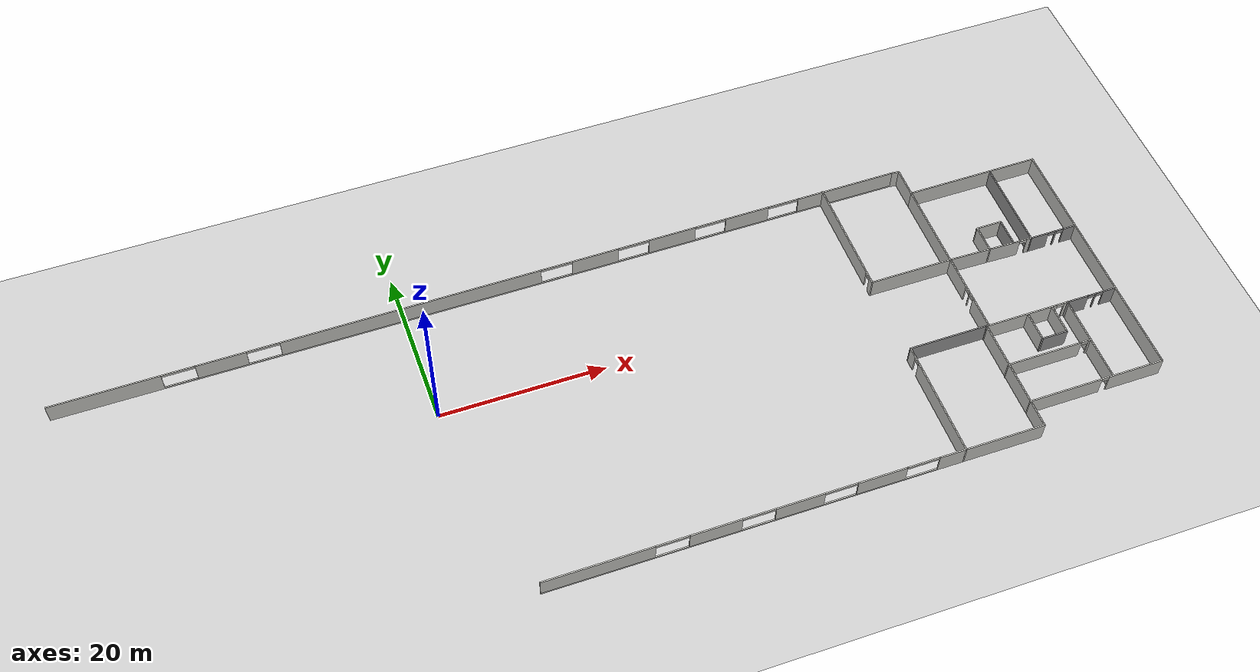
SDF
<sdf version="1.6">
 <world name="default">
  <model name="ground_plane">
   <static>1</static>
   <link name="link">
    <collision name="collision">
     <geometry><plane><normal>0 0 1</normal><size>100 100</size></plane></geometry>
     <surface><friction><ode><mu>100</mu><mu2>50</mu2></ode></friction></surface>
    </collision>
    <visual name="visual">
     <cast_shadows>0</cast_shadows>
     <geometry><plane><normal>0 0 1</normal><size>100 100</size></plane></geometry>
     <material>
      <script><uri>file://media/materials/scripts/gazebo.material</uri><name>Gazebo/Grey</name></script>
     </material>
    </visual>
   </link>
  </model>
  <model name="Erdgeschossen_labor">
   <pose>10.4105 -5.39464 0 0 -0 0</pose>
   <link name="Door_37">
    <collision name="Door_37_Collision">
     <geometry><box><size>0.9 0.17 2</size></box></geometry>
     <pose>0 0 1 0 -0 0</pose>
    </collision>
    <visual name="Door_37_Visual">
     <pose>0 0 1 0 -0 0</pose>
     <geometry><box><size>0.9 0.17 2</size></box></geometry>
     <material>
      <script><uri>file://media/materials/scripts/gazebo.material</uri><name>Gazebo/Grey</name></script>
     </material>
    </visual>
    <pose>54.7211 4.95557 0 0 -0 0</pose>
   </link>
   <link name="Wall_0">
    <pose>-0.038053 19.4617 0 0 -0 0</pose>
    <visual name="Wall_0_Visual_0">
     <pose>-45.1164 0 1.25 0 -0 0</pose>
     <geometry><box><size>13.0172 0.15 2.5</size></box></geometry>
     <material>
      <script><uri>file://media/materials/scripts/gazebo.material</uri><name>Gazebo/CeilingTiled</name></script>
      <ambient>1 1 1 1</ambient>
     </material>
    </visual>
    <collision name="Wall_0_Collision_0">
     <geometry><box><size>13.0172 0.15 2.5</size></box></geometry>
     <pose>-45.1164 0 1.25 0 -0 0</pose>
    </collision>
    <visual name="Wall_0_Visual_1">
     <pose>6.50859 0 0.1 0 -0 0</pose>
     <geometry><box><size>90.2328 0.15 0.2</size></box></geometry>
     <material>
      <script><uri>file://media/materials/scripts/gazebo.material</uri><name>Gazebo/CeilingTiled</name></script>
      <ambient>1 1 1 1</ambient>
     </material>
    </visual>
    <collision name="Wall_0_Collision_1">
     <geometry><box><size>90.2328 0.15 0.2</size></box></geometry>
     <pose>6.50859 0 0.1 0 -0 0</pose>
    </collision>
    <visual name="Wall_0_Visual_2">
     <pose>-31.7614 0 1.35 0 -0 0</pose>
     <geometry><box><size>5.93292 0.15 2.3</size></box></geometry>
     <material>
      <script><uri>file://media/materials/scripts/gazebo.material</uri><name>Gazebo/CeilingTiled</name></script>
      <ambient>1 1 1 1</ambient>
     </material>
    </visual>
    <collision name="Wall_0_Collision_2">
     <geometry><box><size>5.93292 0.15 2.3</size></box></geometry>
     <pose>-31.7614 0 1.35 0 -0 0</pose>
    </collision>
    <visual name="Wall_0_Visual_3">
     <pose>-9.24517 0 1.35 0 -0 0</pose>
     <geometry><box><size>31.3395 0.15 2.3</size></box></geometry>
     <material>
      <script><uri>file://media/materials/scripts/gazebo.material</uri><name>Gazebo/CeilingTiled</name></script>
      <ambient>1 1 1 1</ambient>
     </material>
    </visual>
    <collision name="Wall_0_Collision_3">
     <geometry><box><size>31.3395 0.15 2.3</size></box></geometry>
     <pose>-9.24517 0 1.35 0 -0 0</pose>
    </collision>
    <visual name="Wall_0_Visual_4">
     <pose>13.191 0 1.35 0 -0 0</pose>
     <geometry><box><size>5.77285 0.15 2.3</size></box></geometry>
     <material>
      <script><uri>file://media/materials/scripts/gazebo.material</uri><name>Gazebo/CeilingTiled</name></script>
      <ambient>1 1 1 1</ambient>
     </material>
    </visual>
    <collision name="Wall_0_Collision_4">
     <geometry><box><size>5.77285 0.15 2.3</size></box></geometry>
     <pose>13.191 0 1.35 0 -0 0</pose>
    </collision>
    <visual name="Wall_0_Visual_5">
     <pose>22.9057 0 1.35 0 -0 0</pose>
     <geometry><box><size>5.89661 0.15 2.3</size></box></geometry>
     <material>
      <script><uri>file://media/materials/scripts/gazebo.material</uri><name>Gazebo/CeilingTiled</name></script>
      <ambient>1 1 1 1</ambient>
     </material>
    </visual>
    <collision name="Wall_0_Collision_5">
     <geometry><box><size>5.89661 0.15 2.3</size></box></geometry>
     <pose>22.9057 0 1.35 0 -0 0</pose>
    </collision>
    <visual name="Wall_0_Visual_6">
     <pose>32.4967 0 1.35 0 -0 0</pose>
     <geometry><box><size>5.52534 0.15 2.3</size></box></geometry>
     <material>
      <script><uri>file://media/materials/scripts/gazebo.material</uri><name>Gazebo/CeilingTiled</name></script>
      <ambient>1 1 1 1</ambient>
     </material>
    </visual>
    <collision name="Wall_0_Collision_6">
     <geometry><box><size>5.52534 0.15 2.3</size></box></geometry>
     <pose>32.4967 0 1.35 0 -0 0</pose>
    </collision>
    <visual name="Wall_0_Visual_7">
     <pose>45.3822 0 1.35 0 -0 0</pose>
     <geometry><box><size>12.4856 0.15 2.3</size></box></geometry>
     <material>
      <script><uri>file://media/materials/scripts/gazebo.material</uri><name>Gazebo/CeilingTiled</name></script>
      <ambient>1 1 1 1</ambient>
     </material>
    </visual>
    <collision name="Wall_0_Collision_7">
     <geometry><box><size>12.4856 0.15 2.3</size></box></geometry>
     <pose>45.3822 0 1.35 0 -0 0</pose>
    </collision>
    <visual name="Wall_0_Visual_8">
     <pose>-36.6678 0 2.35 0 -0 0</pose>
     <geometry><box><size>3.88 0.15 0.3</size></box></geometry>
     <material>
      <script><uri>file://media/materials/scripts/gazebo.material</uri><name>Gazebo/CeilingTiled</name></script>
      <ambient>1 1 1 1</ambient>
     </material>
    </visual>
    <collision name="Wall_0_Collision_8">
     <geometry><box><size>3.88 0.15 0.3</size></box></geometry>
     <pose>-36.6678 0 2.35 0 -0 0</pose>
    </collision>
    <visual name="Wall_0_Visual_9">
     <pose>-26.8549 0 2.35 0 -0 0</pose>
     <geometry><box><size>3.88 0.15 0.3</size></box></geometry>
     <material>
      <script><uri>file://media/materials/scripts/gazebo.material</uri><name>Gazebo/CeilingTiled</name></script>
      <ambient>1 1 1 1</ambient>
     </material>
    </visual>
    <collision name="Wall_0_Collision_9">
     <geometry><box><size>3.88 0.15 0.3</size></box></geometry>
     <pose>-26.8549 0 2.35 0 -0 0</pose>
    </collision>
    <visual name="Wall_0_Visual_10">
     <pose>8.36458 0 2.35 0 -0 0</pose>
     <geometry><box><size>3.88 0.15 0.3</size></box></geometry>
     <material>
      <script><uri>file://media/materials/scripts/gazebo.material</uri><name>Gazebo/CeilingTiled</name></script>
      <ambient>1 1 1 1</ambient>
     </material>
    </visual>
    <collision name="Wall_0_Collision_10">
     <geometry><box><size>3.88 0.15 0.3</size></box></geometry>
     <pose>8.36458 0 2.35 0 -0 0</pose>
    </collision>
    <visual name="Wall_0_Visual_11">
     <pose>18.0174 0 2.35 0 -0 0</pose>
     <geometry><box><size>3.88 0.15 0.3</size></box></geometry>
     <material>
      <script><uri>file://media/materials/scripts/gazebo.material</uri><name>Gazebo/CeilingTiled</name></script>
      <ambient>1 1 1 1</ambient>
     </material>
    </visual>
    <collision name="Wall_0_Collision_11">
     <geometry><box><size>3.88 0.15 0.3</size></box></geometry>
     <pose>18.0174 0 2.35 0 -0 0</pose>
    </collision>
    <visual name="Wall_0_Visual_12">
     <pose>27.794 0 2.35 0 -0 0</pose>
     <geometry><box><size>3.88 0.15 0.3</size></box></geometry>
     <material>
      <script><uri>file://media/materials/scripts/gazebo.material</uri><name>Gazebo/CeilingTiled</name></script>
      <ambient>1 1 1 1</ambient>
     </material>
    </visual>
    <collision name="Wall_0_Collision_12">
     <geometry><box><size>3.88 0.15 0.3</size></box></geometry>
     <pose>27.794 0 2.35 0 -0 0</pose>
    </collision>
    <visual name="Wall_0_Visual_13">
     <pose>37.1994 0 2.35 0 -0 0</pose>
     <geometry><box><size>3.88 0.15 0.3</size></box></geometry>
     <material>
      <script><uri>file://media/materials/scripts/gazebo.material</uri><name>Gazebo/CeilingTiled</name></script>
      <ambient>1 1 1 1</ambient>
     </material>
    </visual>
    <collision name="Wall_0_Collision_13">
     <geometry><box><size>3.88 0.15 0.3</size></box></geometry>
     <pose>37.1994 0 2.35 0 -0 0</pose>
    </collision>
   </link>
   <link name="Wall_10">
    <pose>65.825 4.6812 0 0 -0 3.14159</pose>
    <visual name="Wall_10_Visual_0">
     <pose>-2.15466 0 1.25 0 -0 0</pose>
     <geometry><box><size>1.69069 0.15 2.5</size></box></geometry>
     <material>
      <script><uri>file://media/materials/scripts/gazebo.material</uri><name>Gazebo/Grey</name></script>
      <ambient>1 1 1 1</ambient>
     </material>
    </visual>
    <collision name="Wall_10_Collision_0">
     <geometry><box><size>1.69069 0.15 2.5</size></box></geometry>
     <pose>-2.15466 0 1.25 0 -0 0</pose>
    </collision>
    <visual name="Wall_10_Visual_1">
     <pose>-0.324451 0 1.25 0 -0 0</pose>
     <geometry><box><size>0.169725 0.15 2.5</size></box></geometry>
     <material>
      <script><uri>file://media/materials/scripts/gazebo.material</uri><name>Gazebo/Grey</name></script>
      <ambient>1 1 1 1</ambient>
     </material>
    </visual>
    <collision name="Wall_10_Collision_1">
     <geometry><box><size>0.169725 0.15 2.5</size></box></geometry>
     <pose>-0.324451 0 1.25 0 -0 0</pose>
    </collision>
    <visual name="Wall_10_Visual_2">
     <pose>1.83021 0 1.25 0 -0 0</pose>
     <geometry><box><size>2.33959 0.15 2.5</size></box></geometry>
     <material>
      <script><uri>file://media/materials/scripts/gazebo.material</uri><name>Gazebo/Grey</name></script>
      <ambient>1 1 1 1</ambient>
     </material>
    </visual>
    <collision name="Wall_10_Collision_2">
     <geometry><box><size>2.33959 0.15 2.5</size></box></geometry>
     <pose>1.83021 0 1.25 0 -0 0</pose>
    </collision>
    <visual name="Wall_10_Visual_3">
     <pose>-0.859314 0 2.25 0 -0 0</pose>
     <geometry><box><size>0.9 0.15 0.5</size></box></geometry>
     <material>
      <script><uri>file://media/materials/scripts/gazebo.material</uri><name>Gazebo/Grey</name></script>
      <ambient>1 1 1 1</ambient>
     </material>
    </visual>
    <collision name="Wall_10_Collision_3">
     <geometry><box><size>0.9 0.15 0.5</size></box></geometry>
     <pose>-0.859314 0 2.25 0 -0 0</pose>
    </collision>
    <visual name="Wall_10_Visual_4">
     <pose>0.210411 0 2.25 0 -0 0</pose>
     <geometry><box><size>0.9 0.15 0.5</size></box></geometry>
     <material>
      <script><uri>file://media/materials/scripts/gazebo.material</uri><name>Gazebo/Grey</name></script>
      <ambient>1 1 1 1</ambient>
     </material>
    </visual>
    <collision name="Wall_10_Collision_4">
     <geometry><box><size>0.9 0.15 0.5</size></box></geometry>
     <pose>0.210411 0 2.25 0 -0 0</pose>
    </collision>
   </link>
   <link name="Wall_11">
    <collision name="Wall_11_Collision">
     <geometry><box><size>11 0.15 2.5</size></box></geometry>
     <pose>0 0 1.25 0 -0 0</pose>
    </collision>
    <visual name="Wall_11_Visual">
     <pose>0 0 1.25 0 -0 0</pose>
     <geometry><box><size>11 0.15 2.5</size></box></geometry>
     <material>
      <script><uri>file://media/materials/scripts/gazebo.material</uri><name>Gazebo/Grey</name></script>
      <ambient>1 1 1 1</ambient>
     </material>
    </visual>
    <pose>62.9 10.1062 0 0 -0 1.5708</pose>
   </link>
   <link name="Wall_13">
    <collision name="Wall_13_Collision">
     <geometry><box><size>1.04169 0.15 2.5</size></box></geometry>
     <pose>0 0 1.25 0 -0 0</pose>
    </collision>
    <visual name="Wall_13_Visual">
     <pose>0 0 1.25 0 -0 0</pose>
     <geometry><box><size>1.04169 0.15 2.5</size></box></geometry>
     <material>
      <script><uri>file://media/materials/scripts/gazebo.material</uri><name>Gazebo/CeilingTiled</name></script>
      <ambient>1 1 1 1</ambient>
     </material>
    </visual>
    <pose>51.956 19.4215 0 0 -0 3.05118</pose>
   </link>
   <link name="Wall_15">
    <collision name="Wall_15_Collision">
     <geometry><box><size>11 0.15 2.5</size></box></geometry>
     <pose>0 0 1.25 0 -0 0</pose>
    </collision>
    <visual name="Wall_15_Visual">
     <pose>0 0 1.25 0 -0 0</pose>
     <geometry><box><size>11 0.15 2.5</size></box></geometry>
     <material>
      <script><uri>file://media/materials/scripts/gazebo.material</uri><name>Gazebo/CeilingTiled</name></script>
      <ambient>1 1 1 1</ambient>
     </material>
    </visual>
    <pose>52.4 10.3562 0 0 0 -1.5708</pose>
   </link>
   <link name="Wall_16">
    <pose>57.65 4.8062 0 0 0 -0.023805</pose>
    <visual name="Wall_16_Visual_0">
     <pose>-0.791437 0 1.25 0 -0 0</pose>
     <geometry><box><size>9.0701 0.15 2.5</size></box></geometry>
     <material>
      <script><uri>file://media/materials/scripts/gazebo.material</uri><name>Gazebo/CeilingTiled</name></script>
      <ambient>1 1 1 1</ambient>
     </material>
    </visual>
    <collision name="Wall_16_Collision_0">
     <geometry><box><size>9.0701 0.15 2.5</size></box></geometry>
     <pose>-0.791437 0 1.25 0 -0 0</pose>
    </collision>
    <visual name="Wall_16_Visual_1">
     <pose>4.98505 0 1.25 0 -0 0</pose>
     <geometry><box><size>0.682875 0.15 2.5</size></box></geometry>
     <material>
      <script><uri>file://media/materials/scripts/gazebo.material</uri><name>Gazebo/CeilingTiled</name></script>
      <ambient>1 1 1 1</ambient>
     </material>
    </visual>
    <collision name="Wall_16_Collision_1">
     <geometry><box><size>0.682875 0.15 2.5</size></box></geometry>
     <pose>4.98505 0 1.25 0 -0 0</pose>
    </collision>
    <visual name="Wall_16_Visual_2">
     <pose>4.19361 0 2.25 0 -0 0</pose>
     <geometry><box><size>0.9 0.15 0.5</size></box></geometry>
     <material>
      <script><uri>file://media/materials/scripts/gazebo.material</uri><name>Gazebo/CeilingTiled</name></script>
      <ambient>1 1 1 1</ambient>
     </material>
    </visual>
    <collision name="Wall_16_Collision_2">
     <geometry><box><size>0.9 0.15 0.5</size></box></geometry>
     <pose>4.19361 0 2.25 0 -0 0</pose>
    </collision>
   </link>
   <link name="Wall_18">
    <collision name="Wall_18_Collision">
     <geometry><box><size>21 0.15 2.5</size></box></geometry>
     <pose>0 0 1.25 0 -0 0</pose>
    </collision>
    <visual name="Wall_18_Visual">
     <pose>0 0 1.25 0 -0 0</pose>
     <geometry><box><size>21 0.15 2.5</size></box></geometry>
     <material>
      <script><uri>file://media/materials/scripts/gazebo.material</uri><name>Gazebo/CeilingTiled</name></script>
      <ambient>1 1 1 1</ambient>
     </material>
    </visual>
    <pose>68.75 -5.7438 0 0 0 -1.5708</pose>
   </link>
   <link name="Wall_19">
    <pose>60.45 -16.1688 0 0 -0 3.14159</pose>
    <visual name="Wall_19_Visual_0">
     <pose>-4.96727 0 1.25 0 -0 0</pose>
     <geometry><box><size>6.81547 0.15 2.5</size></box></geometry>
     <material>
      <script><uri>file://media/materials/scripts/gazebo.material</uri><name>Gazebo/CeilingTiled</name></script>
      <ambient>1 1 1 1</ambient>
     </material>
    </visual>
    <collision name="Wall_19_Collision_0">
     <geometry><box><size>6.81547 0.15 2.5</size></box></geometry>
     <pose>-4.96727 0 1.25 0 -0 0</pose>
    </collision>
    <visual name="Wall_19_Visual_1">
     <pose>3.85773 0 1.25 0 -0 0</pose>
     <geometry><box><size>9.03453 0.15 2.5</size></box></geometry>
     <material>
      <script><uri>file://media/materials/scripts/gazebo.material</uri><name>Gazebo/CeilingTiled</name></script>
      <ambient>1 1 1 1</ambient>
     </material>
    </visual>
    <collision name="Wall_19_Collision_1">
     <geometry><box><size>9.03453 0.15 2.5</size></box></geometry>
     <pose>3.85773 0 1.25 0 -0 0</pose>
    </collision>
    <visual name="Wall_19_Visual_2">
     <pose>-1.10953 0 2.25 0 -0 0</pose>
     <geometry><box><size>0.9 0.15 0.5</size></box></geometry>
     <material>
      <script><uri>file://media/materials/scripts/gazebo.material</uri><name>Gazebo/CeilingTiled</name></script>
      <ambient>1 1 1 1</ambient>
     </material>
    </visual>
    <collision name="Wall_19_Collision_2">
     <geometry><box><size>0.9 0.15 0.5</size></box></geometry>
     <pose>-1.10953 0 2.25 0 -0 0</pose>
    </collision>
   </link>
   <link name="Wall_20">
    <collision name="Wall_20_Collision">
     <geometry><box><size>10.75 0.15 2.5</size></box></geometry>
     <pose>0 0 1.25 0 -0 0</pose>
    </collision>
    <visual name="Wall_20_Visual">
     <pose>0 0 1.25 0 -0 0</pose>
     <geometry><box><size>10.75 0.15 2.5</size></box></geometry>
     <material>
      <script><uri>file://media/materials/scripts/gazebo.material</uri><name>Gazebo/CeilingTiled</name></script>
      <ambient>1 1 1 1</ambient>
     </material>
    </visual>
    <pose>52.15 -10.8688 0 0 -0 1.5708</pose>
   </link>
   <link name="Wall_22">
    <collision name="Wall_22_Collision">
     <geometry><box><size>10.5 0.15 2.5</size></box></geometry>
     <pose>0 0 1.25 0 -0 0</pose>
    </collision>
    <visual name="Wall_22_Visual">
     <pose>0 0 1.25 0 -0 0</pose>
     <geometry><box><size>10.5 0.15 2.5</size></box></geometry>
     <material>
      <script><uri>file://media/materials/scripts/gazebo.material</uri><name>Gazebo/CeilingTiled</name></script>
      <ambient>1 1 1 1</ambient>
     </material>
    </visual>
    <pose>62.5 -10.7438 0 0 0 -1.5708</pose>
   </link>
   <link name="Wall_25">
    <collision name="Wall_25_Collision">
     <geometry><box><size>0.5 0.15 2.5</size></box></geometry>
     <pose>0 0 1.25 0 -0 0</pose>
    </collision>
    <visual name="Wall_25_Visual">
     <pose>0 0 1.25 0 -0 0</pose>
     <geometry><box><size>0.5 0.15 2.5</size></box></geometry>
     <material>
      <script><uri>file://media/materials/scripts/gazebo.material</uri><name>Gazebo/Grey</name></script>
      <ambient>1 1 1 1</ambient>
     </material>
    </visual>
    <pose>52.15 -5.3938 0 0 -0 1.5708</pose>
   </link>
   <link name="Wall_26">
    <pose>57.325 -5.2188 0 0 -0 0</pose>
    <visual name="Wall_26_Visual_0">
     <pose>-0.710538 0 1.25 0 -0 0</pose>
     <geometry><box><size>9.07892 0.15 2.5</size></box></geometry>
     <material>
      <script><uri>file://media/materials/scripts/gazebo.material</uri><name>Gazebo/CeilingTiled</name></script>
      <ambient>1 1 1 1</ambient>
     </material>
    </visual>
    <collision name="Wall_26_Collision_0">
     <geometry><box><size>9.07892 0.15 2.5</size></box></geometry>
     <pose>-0.710538 0 1.25 0 -0 0</pose>
    </collision>
    <visual name="Wall_26_Visual_1">
     <pose>4.98946 0 1.25 0 -0 0</pose>
     <geometry><box><size>0.521077 0.15 2.5</size></box></geometry>
     <material>
      <script><uri>file://media/materials/scripts/gazebo.material</uri><name>Gazebo/CeilingTiled</name></script>
      <ambient>1 1 1 1</ambient>
     </material>
    </visual>
    <collision name="Wall_26_Collision_1">
     <geometry><box><size>0.521077 0.15 2.5</size></box></geometry>
     <pose>4.98946 0 1.25 0 -0 0</pose>
    </collision>
    <visual name="Wall_26_Visual_2">
     <pose>4.27892 0 2.25 0 -0 0</pose>
     <geometry><box><size>0.9 0.15 0.5</size></box></geometry>
     <material>
      <script><uri>file://media/materials/scripts/gazebo.material</uri><name>Gazebo/CeilingTiled</name></script>
      <ambient>1 1 1 1</ambient>
     </material>
    </visual>
    <collision name="Wall_26_Collision_2">
     <geometry><box><size>0.9 0.15 0.5</size></box></geometry>
     <pose>4.27892 0 2.25 0 -0 0</pose>
    </collision>
   </link>
   <link name="Wall_27">
    <collision name="Wall_27_Collision">
     <geometry><box><size>0.5 0.15 2.5</size></box></geometry>
     <pose>0 0 1.25 0 -0 0</pose>
    </collision>
    <visual name="Wall_27_Visual">
     <pose>0 0 1.25 0 -0 0</pose>
     <geometry><box><size>0.5 0.15 2.5</size></box></geometry>
     <material>
      <script><uri>file://media/materials/scripts/gazebo.material</uri><name>Gazebo/Grey</name></script>
      <ambient>1 1 1 1</ambient>
     </material>
    </visual>
    <pose>62.5 -5.3938 0 0 0 -1.5708</pose>
   </link>
   <link name="Wall_29">
    <pose>65.55 -5.2188 0 0 -0 0</pose>
    <visual name="Wall_29_Visual_0">
     <pose>-1.74988 0 1.25 0 -0 0</pose>
     <geometry><box><size>2.75023 0.15 2.5</size></box></geometry>
     <material>
      <script><uri>file://media/materials/scripts/gazebo.material</uri><name>Gazebo/Grey</name></script>
      <ambient>1 1 1 1</ambient>
     </material>
    </visual>
    <collision name="Wall_29_Collision_0">
     <geometry><box><size>2.75023 0.15 2.5</size></box></geometry>
     <pose>-1.74988 0 1.25 0 -0 0</pose>
    </collision>
    <visual name="Wall_29_Visual_1">
     <pose>0.607143 0 1.25 0 -0 0</pose>
     <geometry><box><size>0.16382 0.15 2.5</size></box></geometry>
     <material>
      <script><uri>file://media/materials/scripts/gazebo.material</uri><name>Gazebo/Grey</name></script>
      <ambient>1 1 1 1</ambient>
     </material>
    </visual>
    <collision name="Wall_29_Collision_1">
     <geometry><box><size>0.16382 0.15 2.5</size></box></geometry>
     <pose>0.607143 0 1.25 0 -0 0</pose>
    </collision>
    <visual name="Wall_29_Visual_2">
     <pose>2.35703 0 1.25 0 -0 0</pose>
     <geometry><box><size>1.53595 0.15 2.5</size></box></geometry>
     <material>
      <script><uri>file://media/materials/scripts/gazebo.material</uri><name>Gazebo/Grey</name></script>
      <ambient>1 1 1 1</ambient>
     </material>
    </visual>
    <collision name="Wall_29_Collision_2">
     <geometry><box><size>1.53595 0.15 2.5</size></box></geometry>
     <pose>2.35703 0 1.25 0 -0 0</pose>
    </collision>
    <visual name="Wall_29_Visual_3">
     <pose>0.075233 0 2.25 0 -0 0</pose>
     <geometry><box><size>0.9 0.15 0.5</size></box></geometry>
     <material>
      <script><uri>file://media/materials/scripts/gazebo.material</uri><name>Gazebo/Grey</name></script>
      <ambient>1 1 1 1</ambient>
     </material>
    </visual>
    <collision name="Wall_29_Collision_3">
     <geometry><box><size>0.9 0.15 0.5</size></box></geometry>
     <pose>0.075233 0 2.25 0 -0 0</pose>
    </collision>
    <visual name="Wall_29_Visual_4">
     <pose>1.13905 0 2.25 0 -0 0</pose>
     <geometry><box><size>0.9 0.15 0.5</size></box></geometry>
     <material>
      <script><uri>file://media/materials/scripts/gazebo.material</uri><name>Gazebo/Grey</name></script>
      <ambient>1 1 1 1</ambient>
     </material>
    </visual>
    <collision name="Wall_29_Collision_4">
     <geometry><box><size>0.9 0.15 0.5</size></box></geometry>
     <pose>1.13905 0 2.25 0 -0 0</pose>
    </collision>
   </link>
   <link name="Wall_31">
    <collision name="Wall_31_Collision">
     <geometry><box><size>3.5 0.15 2.5</size></box></geometry>
     <pose>0 0 1.25 0 -0 0</pose>
    </collision>
    <visual name="Wall_31_Visual">
     <pose>0 0 1.25 0 -0 0</pose>
     <geometry><box><size>3.5 0.15 2.5</size></box></geometry>
     <material>
      <script><uri>file://media/materials/scripts/gazebo.material</uri><name>Gazebo/CeilingTiled</name></script>
      <ambient>1 1 1 1</ambient>
     </material>
    </visual>
    <pose>52.15 -17.8438 0 0 0 -1.5708</pose>
   </link>
   <link name="Wall_32">
    <pose>22.85 -19.5188 0 0 -0 3.14159</pose>
    <visual name="Wall_32_Visual_0">
     <pose>-22.984 0 1.25 0 -0 0</pose>
     <geometry><box><size>12.7819 0.15 2.5</size></box></geometry>
     <material>
      <script><uri>file://media/materials/scripts/gazebo.material</uri><name>Gazebo/CeilingTiled</name></script>
      <ambient>1 1 1 1</ambient>
     </material>
    </visual>
    <collision name="Wall_32_Collision_0">
     <geometry><box><size>12.7819 0.15 2.5</size></box></geometry>
     <pose>-22.984 0 1.25 0 -0 0</pose>
    </collision>
    <visual name="Wall_32_Visual_1">
     <pose>6.39096 0 0.1 0 -0 0</pose>
     <geometry><box><size>45.9681 0.15 0.2</size></box></geometry>
     <material>
      <script><uri>file://media/materials/scripts/gazebo.material</uri><name>Gazebo/CeilingTiled</name></script>
      <ambient>1 1 1 1</ambient>
     </material>
    </visual>
    <collision name="Wall_32_Collision_1">
     <geometry><box><size>45.9681 0.15 0.2</size></box></geometry>
     <pose>6.39096 0 0.1 0 -0 0</pose>
    </collision>
    <visual name="Wall_32_Visual_2">
     <pose>-9.79822 0 1.35 0 -0 0</pose>
     <geometry><box><size>5.82974 0.15 2.3</size></box></geometry>
     <material>
      <script><uri>file://media/materials/scripts/gazebo.material</uri><name>Gazebo/CeilingTiled</name></script>
      <ambient>1 1 1 1</ambient>
     </material>
    </visual>
    <collision name="Wall_32_Collision_2">
     <geometry><box><size>5.82974 0.15 2.3</size></box></geometry>
     <pose>-9.79822 0 1.35 0 -0 0</pose>
    </collision>
    <visual name="Wall_32_Visual_3">
     <pose>-0.149557 0 1.35 0 -0 0</pose>
     <geometry><box><size>5.70758 0.15 2.3</size></box></geometry>
     <material>
      <script><uri>file://media/materials/scripts/gazebo.material</uri><name>Gazebo/CeilingTiled</name></script>
      <ambient>1 1 1 1</ambient>
     </material>
    </visual>
    <collision name="Wall_32_Collision_3">
     <geometry><box><size>5.70758 0.15 2.3</size></box></geometry>
     <pose>-0.149557 0 1.35 0 -0 0</pose>
    </collision>
    <visual name="Wall_32_Visual_4">
     <pose>9.60231 0 1.35 0 -0 0</pose>
     <geometry><box><size>6.03615 0.15 2.3</size></box></geometry>
     <material>
      <script><uri>file://media/materials/scripts/gazebo.material</uri><name>Gazebo/CeilingTiled</name></script>
      <ambient>1 1 1 1</ambient>
     </material>
    </visual>
    <collision name="Wall_32_Collision_4">
     <geometry><box><size>6.03615 0.15 2.3</size></box></geometry>
     <pose>9.60231 0 1.35 0 -0 0</pose>
    </collision>
    <visual name="Wall_32_Visual_5">
     <pose>22.9377 0 1.35 0 -0 0</pose>
     <geometry><box><size>12.8746 0.15 2.3</size></box></geometry>
     <material>
      <script><uri>file://media/materials/scripts/gazebo.material</uri><name>Gazebo/CeilingTiled</name></script>
      <ambient>1 1 1 1</ambient>
     </material>
    </visual>
    <collision name="Wall_32_Collision_5">
     <geometry><box><size>12.8746 0.15 2.3</size></box></geometry>
     <pose>22.9377 0 1.35 0 -0 0</pose>
    </collision>
    <visual name="Wall_32_Visual_6">
     <pose>-14.6531 0 2.35 0 -0 0</pose>
     <geometry><box><size>3.88 0.15 0.3</size></box></geometry>
     <material>
      <script><uri>file://media/materials/scripts/gazebo.material</uri><name>Gazebo/CeilingTiled</name></script>
      <ambient>1 1 1 1</ambient>
     </material>
    </visual>
    <collision name="Wall_32_Collision_6">
     <geometry><box><size>3.88 0.15 0.3</size></box></geometry>
     <pose>-14.6531 0 2.35 0 -0 0</pose>
    </collision>
    <visual name="Wall_32_Visual_7">
     <pose>-4.94335 0 2.35 0 -0 0</pose>
     <geometry><box><size>3.88 0.15 0.3</size></box></geometry>
     <material>
      <script><uri>file://media/materials/scripts/gazebo.material</uri><name>Gazebo/CeilingTiled</name></script>
      <ambient>1 1 1 1</ambient>
     </material>
    </visual>
    <collision name="Wall_32_Collision_7">
     <geometry><box><size>3.88 0.15 0.3</size></box></geometry>
     <pose>-4.94335 0 2.35 0 -0 0</pose>
    </collision>
    <visual name="Wall_32_Visual_8">
     <pose>4.64423 0 2.35 0 -0 0</pose>
     <geometry><box><size>3.88 0.15 0.3</size></box></geometry>
     <material>
      <script><uri>file://media/materials/scripts/gazebo.material</uri><name>Gazebo/CeilingTiled</name></script>
      <ambient>1 1 1 1</ambient>
     </material>
    </visual>
    <collision name="Wall_32_Collision_8">
     <geometry><box><size>3.88 0.15 0.3</size></box></geometry>
     <pose>4.64423 0 2.35 0 -0 0</pose>
    </collision>
    <visual name="Wall_32_Visual_9">
     <pose>14.5604 0 2.35 0 -0 0</pose>
     <geometry><box><size>3.88 0.15 0.3</size></box></geometry>
     <material>
      <script><uri>file://media/materials/scripts/gazebo.material</uri><name>Gazebo/CeilingTiled</name></script>
      <ambient>1 1 1 1</ambient>
     </material>
    </visual>
    <collision name="Wall_32_Collision_9">
     <geometry><box><size>3.88 0.15 0.3</size></box></geometry>
     <pose>14.5604 0 2.35 0 -0 0</pose>
    </collision>
   </link>
   <link name="Wall_56">
    <pose>42.3375 12.225 0 0 0 -1.5708</pose>
    <visual name="Wall_56_Visual_0">
     <pose>-0.833294 0 1.25 0 -0 0</pose>
     <geometry><box><size>13.0834 0.15 2.5</size></box></geometry>
     <material>
      <script><uri>file://media/materials/scripts/gazebo.material</uri><name>Gazebo/CeilingTiled</name></script>
      <ambient>1 1 1 1</ambient>
     </material>
    </visual>
    <collision name="Wall_56_Collision_0">
     <geometry><box><size>13.0834 0.15 2.5</size></box></geometry>
     <pose>-0.833294 0 1.25 0 -0 0</pose>
    </collision>
    <visual name="Wall_56_Visual_1">
     <pose>6.99171 0 1.25 0 -0 0</pose>
     <geometry><box><size>0.766588 0.15 2.5</size></box></geometry>
     <material>
      <script><uri>file://media/materials/scripts/gazebo.material</uri><name>Gazebo/CeilingTiled</name></script>
      <ambient>1 1 1 1</ambient>
     </material>
    </visual>
    <collision name="Wall_56_Collision_1">
     <geometry><box><size>0.766588 0.15 2.5</size></box></geometry>
     <pose>6.99171 0 1.25 0 -0 0</pose>
    </collision>
    <visual name="Wall_56_Visual_2">
     <pose>6.15841 0 2.25 0 -0 0</pose>
     <geometry><box><size>0.9 0.15 0.5</size></box></geometry>
     <material>
      <script><uri>file://media/materials/scripts/gazebo.material</uri><name>Gazebo/CeilingTiled</name></script>
      <ambient>1 1 1 1</ambient>
     </material>
    </visual>
    <collision name="Wall_56_Collision_2">
     <geometry><box><size>0.9 0.15 0.5</size></box></geometry>
     <pose>6.15841 0 2.25 0 -0 0</pose>
    </collision>
   </link>
   <link name="Wall_57">
    <collision name="Wall_57_Collision">
     <geometry><box><size>10.25 0.15 2.5</size></box></geometry>
     <pose>0 0 1.25 0 -0 0</pose>
    </collision>
    <visual name="Wall_57_Visual">
     <pose>0 0 1.25 0 -0 0</pose>
     <geometry><box><size>10.25 0.15 2.5</size></box></geometry>
     <material>
      <script><uri>file://media/materials/scripts/gazebo.material</uri><name>Gazebo/CeilingTiled</name></script>
      <ambient>1 1 1 1</ambient>
     </material>
    </visual>
    <pose>47.3875 4.925 0 0 -0 0</pose>
   </link>
   <link name="Wall_58">
    <pose>52.4375 -0.125 0 0 0 -1.5708</pose>
    <visual name="Wall_58_Visual_0">
     <pose>-2.97823 0 1.25 0 -0 0</pose>
     <geometry><box><size>4.29353 0.15 2.5</size></box></geometry>
     <material>
      <script><uri>file://media/materials/scripts/gazebo.material</uri><name>Gazebo/CeilingTiled</name></script>
      <ambient>1 1 1 1</ambient>
     </material>
    </visual>
    <collision name="Wall_58_Collision_0">
     <geometry><box><size>4.29353 0.15 2.5</size></box></geometry>
     <pose>-2.97823 0 1.25 0 -0 0</pose>
    </collision>
    <visual name="Wall_58_Visual_1">
     <pose>0.109528 0 1.25 0 -0 0</pose>
     <geometry><box><size>0.081992 0.15 2.5</size></box></geometry>
     <material>
      <script><uri>file://media/materials/scripts/gazebo.material</uri><name>Gazebo/CeilingTiled</name></script>
      <ambient>1 1 1 1</ambient>
     </material>
    </visual>
    <collision name="Wall_58_Collision_1">
     <geometry><box><size>0.081992 0.15 2.5</size></box></geometry>
     <pose>0.109528 0 1.25 0 -0 0</pose>
    </collision>
    <visual name="Wall_58_Visual_2">
     <pose>3.08776 0 1.25 0 -0 0</pose>
     <geometry><box><size>4.07447 0.15 2.5</size></box></geometry>
     <material>
      <script><uri>file://media/materials/scripts/gazebo.material</uri><name>Gazebo/CeilingTiled</name></script>
      <ambient>1 1 1 1</ambient>
     </material>
    </visual>
    <collision name="Wall_58_Collision_2">
     <geometry><box><size>4.07447 0.15 2.5</size></box></geometry>
     <pose>3.08776 0 1.25 0 -0 0</pose>
    </collision>
    <visual name="Wall_58_Visual_3">
     <pose>-0.381468 0 2.25 0 -0 0</pose>
     <geometry><box><size>0.9 0.15 0.5</size></box></geometry>
     <material>
      <script><uri>file://media/materials/scripts/gazebo.material</uri><name>Gazebo/CeilingTiled</name></script>
      <ambient>1 1 1 1</ambient>
     </material>
    </visual>
    <collision name="Wall_58_Collision_3">
     <geometry><box><size>0.9 0.15 0.5</size></box></geometry>
     <pose>-0.381468 0 2.25 0 -0 0</pose>
    </collision>
    <visual name="Wall_58_Visual_4">
     <pose>0.600525 0 2.25 0 -0 0</pose>
     <geometry><box><size>0.9 0.15 0.5</size></box></geometry>
     <material>
      <script><uri>file://media/materials/scripts/gazebo.material</uri><name>Gazebo/CeilingTiled</name></script>
      <ambient>1 1 1 1</ambient>
     </material>
    </visual>
    <collision name="Wall_58_Collision_4">
     <geometry><box><size>0.9 0.15 0.5</size></box></geometry>
     <pose>0.600525 0 2.25 0 -0 0</pose>
    </collision>
   </link>
   <link name="Wall_59">
    <collision name="Wall_59_Collision">
     <geometry><box><size>10 0.15 2.5</size></box></geometry>
     <pose>0 0 1.25 0 -0 0</pose>
    </collision>
    <visual name="Wall_59_Visual">
     <pose>0 0 1.25 0 -0 0</pose>
     <geometry><box><size>10 0.15 2.5</size></box></geometry>
     <material>
      <script><uri>file://media/materials/scripts/gazebo.material</uri><name>Gazebo/Grey</name></script>
      <ambient>1 1 1 1</ambient>
     </material>
    </visual>
    <pose>47.5125 -5.175 0 0 -0 3.14159</pose>
   </link>
   <link name="Wall_60">
    <pose>42.5875 -12.35 0 0 0 -1.5708</pose>
    <visual name="Wall_60_Visual_0">
     <pose>-6.5526 0 1.25 0 -0 0</pose>
     <geometry><box><size>1.39481 0.15 2.5</size></box></geometry>
     <material>
      <script><uri>file://media/materials/scripts/gazebo.material</uri><name>Gazebo/CeilingTiled</name></script>
      <ambient>1 1 1 1</ambient>
     </material>
    </visual>
    <collision name="Wall_60_Collision_0">
     <geometry><box><size>1.39481 0.15 2.5</size></box></geometry>
     <pose>-6.5526 0 1.25 0 -0 0</pose>
    </collision>
    <visual name="Wall_60_Visual_1">
     <pose>1.14741 0 1.25 0 -0 0</pose>
     <geometry><box><size>12.2052 0.15 2.5</size></box></geometry>
     <material>
      <script><uri>file://media/materials/scripts/gazebo.material</uri><name>Gazebo/CeilingTiled</name></script>
      <ambient>1 1 1 1</ambient>
     </material>
    </visual>
    <collision name="Wall_60_Collision_1">
     <geometry><box><size>12.2052 0.15 2.5</size></box></geometry>
     <pose>1.14741 0 1.25 0 -0 0</pose>
    </collision>
    <visual name="Wall_60_Visual_2">
     <pose>-5.40519 0 2.25 0 -0 0</pose>
     <geometry><box><size>0.9 0.15 0.5</size></box></geometry>
     <material>
      <script><uri>file://media/materials/scripts/gazebo.material</uri><name>Gazebo/CeilingTiled</name></script>
      <ambient>1 1 1 1</ambient>
     </material>
    </visual>
    <collision name="Wall_60_Collision_2">
     <geometry><box><size>0.9 0.15 0.5</size></box></geometry>
     <pose>-5.40519 0 2.25 0 -0 0</pose>
    </collision>
   </link>
   <link name="Wall_7">
    <collision name="Wall_7_Collision">
     <geometry><box><size>3.75 0.15 2.5</size></box></geometry>
     <pose>0 0 1.25 0 -0 0</pose>
    </collision>
    <visual name="Wall_7_Visual">
     <pose>0 0 1.25 0 -0 0</pose>
     <geometry><box><size>3.75 0.15 2.5</size></box></geometry>
     <material>
      <script><uri>file://media/materials/scripts/gazebo.material</uri><name>Gazebo/CeilingTiled</name></script>
      <ambient>1 1 1 1</ambient>
     </material>
    </visual>
    <pose>52.4 17.5812 0 0 0 -1.5708</pose>
   </link>
   <link name="Wall_73">
    <collision name="Wall_73_Collision">
     <geometry><box><size>3.75 0.15 2.5</size></box></geometry>
     <pose>0 0 1.25 0 -0 0</pose>
    </collision>
    <visual name="Wall_73_Visual">
     <pose>0 0 1.25 0 -0 0</pose>
     <geometry><box><size>3.75 0.15 2.5</size></box></geometry>
     <material>
      <script><uri>file://media/materials/scripts/gazebo.material</uri><name>Gazebo/CeilingTiled</name></script>
      <ambient>1 1 1 1</ambient>
     </material>
    </visual>
    <pose>60.4938 -7.1291 0 0 0 -1.5708</pose>
   </link>
   <link name="Wall_78">
    <collision name="Wall_78_Collision">
     <geometry><box><size>3.25 0.15 2.5</size></box></geometry>
     <pose>0 0 1.25 0 -0 0</pose>
    </collision>
    <visual name="Wall_78_Visual">
     <pose>0 0 1.25 0 -0 0</pose>
     <geometry><box><size>3.25 0.15 2.5</size></box></geometry>
     <material>
      <script><uri>file://media/materials/scripts/gazebo.material</uri><name>Gazebo/Grey</name></script>
      <ambient>1 1 1 1</ambient>
     </material>
    </visual>
    <pose>58.9438 -8.9291 0 0 -0 3.14159</pose>
   </link>
   <link name="Wall_79">
    <collision name="Wall_79_Collision">
     <geometry><box><size>3.75 0.15 2.5</size></box></geometry>
     <pose>0 0 1.25 0 -0 0</pose>
    </collision>
    <visual name="Wall_79_Visual">
     <pose>0 0 1.25 0 -0 0</pose>
     <geometry><box><size>3.75 0.15 2.5</size></box></geometry>
     <material>
      <script><uri>file://media/materials/scripts/gazebo.material</uri><name>Gazebo/CeilingTiled</name></script>
      <ambient>1 1 1 1</ambient>
     </material>
    </visual>
    <pose>57.3938 -7.1291 0 0 -0 1.5708</pose>
   </link>
   <link name="Wall_8">
    <collision name="Wall_8_Collision">
     <geometry><box><size>16.5 0.15 2.5</size></box></geometry>
     <pose>0 0 1.25 0 -0 0</pose>
    </collision>
    <visual name="Wall_8_Visual">
     <pose>0 0 1.25 0 -0 0</pose>
     <geometry><box><size>16.5 0.15 2.5</size></box></geometry>
     <material>
      <script><uri>file://media/materials/scripts/gazebo.material</uri><name>Gazebo/CeilingTiled</name></script>
      <ambient>1 1 1 1</ambient>
     </material>
    </visual>
    <pose>60.575 15.7812 0 0 -0 0</pose>
   </link>
   <link name="Wall_81">
    <pose>57.2861 -10.8951 0 0 -0 0</pose>
    <visual name="Wall_81_Visual_0">
     <pose>-0.621835 0 1.25 0 -0 0</pose>
     <geometry><box><size>9.25633 0.15 2.5</size></box></geometry>
     <material>
      <script><uri>file://media/materials/scripts/gazebo.material</uri><name>Gazebo/CeilingTiled</name></script>
      <ambient>1 1 1 1</ambient>
     </material>
    </visual>
    <collision name="Wall_81_Collision_0">
     <geometry><box><size>9.25633 0.15 2.5</size></box></geometry>
     <pose>-0.621835 0 1.25 0 -0 0</pose>
    </collision>
    <visual name="Wall_81_Visual_1">
     <pose>5.07817 0 1.25 0 -0 0</pose>
     <geometry><box><size>0.343671 0.15 2.5</size></box></geometry>
     <material>
      <script><uri>file://media/materials/scripts/gazebo.material</uri><name>Gazebo/CeilingTiled</name></script>
      <ambient>1 1 1 1</ambient>
     </material>
    </visual>
    <collision name="Wall_81_Collision_1">
     <geometry><box><size>0.343671 0.15 2.5</size></box></geometry>
     <pose>5.07817 0 1.25 0 -0 0</pose>
    </collision>
    <visual name="Wall_81_Visual_2">
     <pose>4.45633 0 2.25 0 -0 0</pose>
     <geometry><box><size>0.9 0.15 0.5</size></box></geometry>
     <material>
      <script><uri>file://media/materials/scripts/gazebo.material</uri><name>Gazebo/CeilingTiled</name></script>
      <ambient>1 1 1 1</ambient>
     </material>
    </visual>
    <collision name="Wall_81_Collision_2">
     <geometry><box><size>0.9 0.15 0.5</size></box></geometry>
     <pose>4.45633 0 2.25 0 -0 0</pose>
    </collision>
   </link>
   <link name="Wall_83">
    <collision name="Wall_83_Collision">
     <geometry><box><size>3.5 0.15 2.5</size></box></geometry>
     <pose>0 0 1.25 0 -0 0</pose>
    </collision>
    <visual name="Wall_83_Visual">
     <pose>0 0 1.25 0 -0 0</pose>
     <geometry><box><size>3.5 0.15 2.5</size></box></geometry>
     <material>
      <script><uri>file://media/materials/scripts/gazebo.material</uri><name>Gazebo/Grey</name></script>
      <ambient>1 1 1 1</ambient>
     </material>
    </visual>
    <pose>60.6164 6.47931 0 0 -0 1.5708</pose>
   </link>
   <link name="Wall_84">
    <collision name="Wall_84_Collision">
     <geometry><box><size>3.25 0.15 2.5</size></box></geometry>
     <pose>0 0 1.25 0 -0 0</pose>
    </collision>
    <visual name="Wall_84_Visual">
     <pose>0 0 1.25 0 -0 0</pose>
     <geometry><box><size>3.25 0.15 2.5</size></box></geometry>
     <material>
      <script><uri>file://media/materials/scripts/gazebo.material</uri><name>Gazebo/CeilingTiled</name></script>
      <ambient>1 1 1 1</ambient>
     </material>
    </visual>
    <pose>59.0664 8.15431 0 0 -0 3.14159</pose>
   </link>
   <link name="Wall_87">
    <collision name="Wall_87_Collision">
     <geometry><box><size>3.5 0.15 2.5</size></box></geometry>
     <pose>0 0 1.25 0 -0 0</pose>
    </collision>
    <visual name="Wall_87_Visual">
     <pose>0 0 1.25 0 -0 0</pose>
     <geometry><box><size>3.5 0.15 2.5</size></box></geometry>
     <material>
      <script><uri>file://media/materials/scripts/gazebo.material</uri><name>Gazebo/CeilingTiled</name></script>
      <ambient>1 1 1 1</ambient>
     </material>
    </visual>
    <pose>57.5164 6.47931 0 0 0 -1.5708</pose>
   </link>
   <link name="Wall_9">
    <collision name="Wall_9_Collision">
     <geometry><box><size>11.25 0.15 2.5</size></box></geometry>
     <pose>0 0 1.25 0 -0 0</pose>
    </collision>
    <visual name="Wall_9_Visual">
     <pose>0 0 1.25 0 -0 0</pose>
     <geometry><box><size>11.25 0.15 2.5</size></box></geometry>
     <material>
      <script><uri>file://media/materials/scripts/gazebo.material</uri><name>Gazebo/CeilingTiled</name></script>
      <ambient>1 1 1 1</ambient>
     </material>
    </visual>
    <pose>68.75 10.2312 0 0 0 -1.5708</pose>
   </link>
   <static>1</static>
  </model>
 </world>
</sdf>
